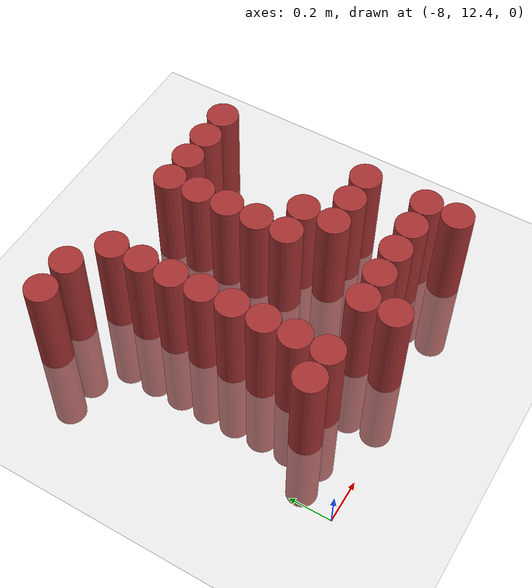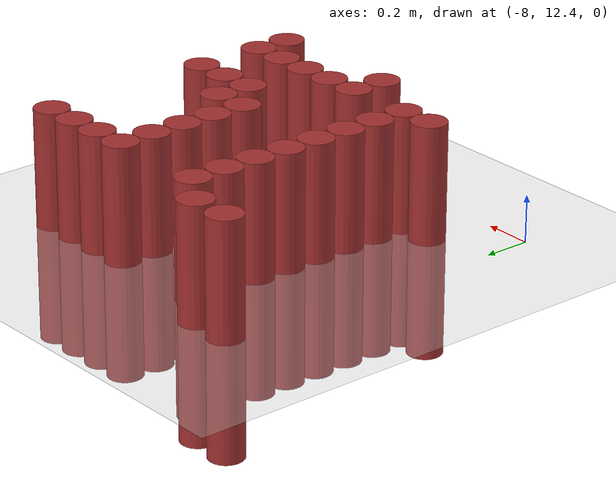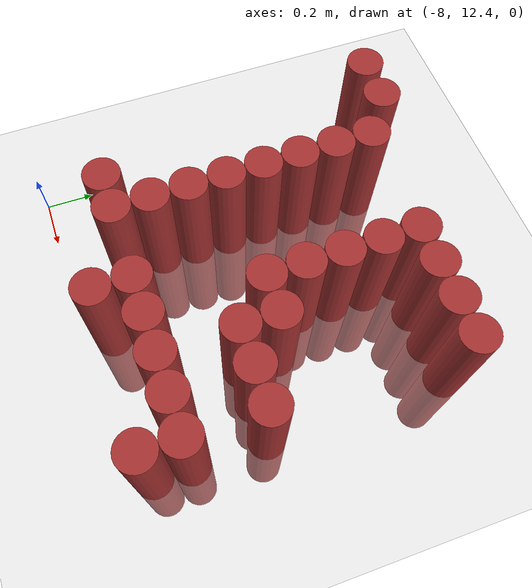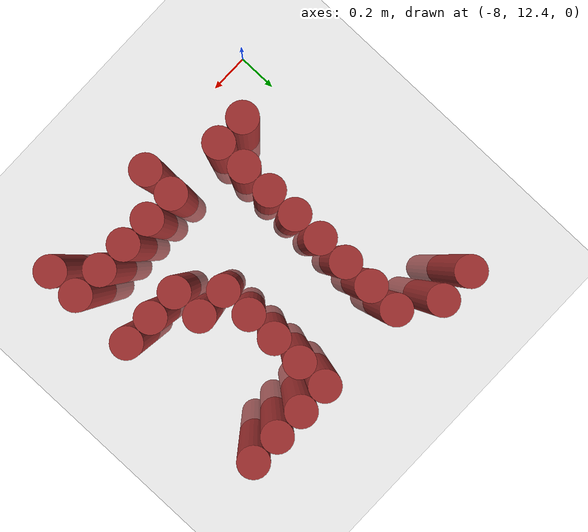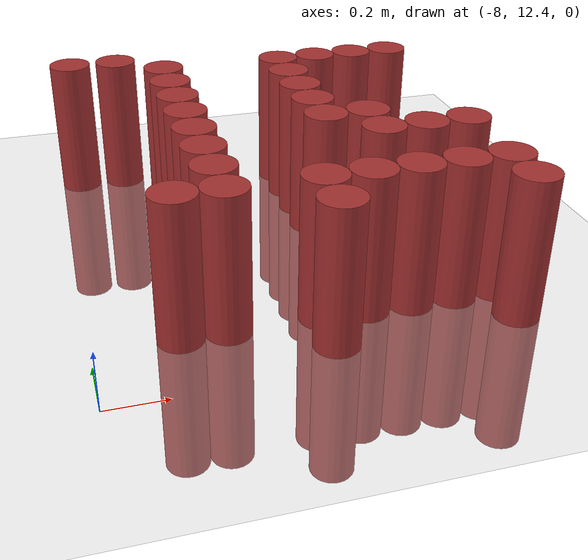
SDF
<sdf version="1.6">
 <world name="default">
  <model name="ground_plane">
   <static>1</static>
   <link name="link">
    <collision name="collision">
     <geometry><plane><normal>0 0 1</normal><size>100 100</size></plane></geometry>
     <surface><friction><ode><mu>100</mu><mu2>50</mu2></ode></friction></surface>
    </collision>
    <visual name="visual">
     <cast_shadows>0</cast_shadows>
     <geometry><plane><normal>0 0 1</normal><size>100 100</size></plane></geometry>
     <material>
      <script><uri>file://media/materials/scripts/gazebo.material</uri><name>Gazebo/Grey</name></script>
     </material>
    </visual>
   </link>
  </model>
  <model name="unit_cylinder_680">
   <static>1</static>
   <pose>-7.725 12.675 0 0 -0 0</pose>
   <link name="link">
    <inertial>
     <mass>1</mass>
     <inertia><ixx>0.145833</ixx><ixy>0</ixy><ixz>0</ixz><iyy>0.145833</iyy><iyz>0</iyz><izz>0.125</izz></inertia>
    </inertial>
    <collision name="collision">
     <geometry><cylinder><radius>0.075</radius><length>1</length></cylinder></geometry>
    </collision>
    <visual name="visual">
     <geometry><cylinder><radius>0.075</radius><length>1</length></cylinder></geometry>
     <material><ambient>0.648 0.192 0.192 1</ambient><diffuse>0.648 0.192 0.192 1</diffuse></material>
     <material>
      <script><name>Gazebo/Grey</name><uri>file://media/materials/scripts/gazebo.material</uri></script>
     </material>
    </visual>
   </link>
  </model>
  <model name="unit_cylinder_699">
   <static>1</static>
   <pose>-7.575 12.675 0 0 -0 0</pose>
   <link name="link">
    <inertial>
     <mass>1</mass>
     <inertia><ixx>0.145833</ixx><ixy>0</ixy><ixz>0</ixz><iyy>0.145833</iyy><iyz>0</iyz><izz>0.125</izz></inertia>
    </inertial>
    <collision name="collision">
     <geometry><cylinder><radius>0.075</radius><length>1</length></cylinder></geometry>
    </collision>
    <visual name="visual">
     <geometry><cylinder><radius>0.075</radius><length>1</length></cylinder></geometry>
     <material><ambient>0.648 0.192 0.192 1</ambient><diffuse>0.648 0.192 0.192 1</diffuse></material>
     <material>
      <script><name>Gazebo/Grey</name><uri>file://media/materials/scripts/gazebo.material</uri></script>
     </material>
    </visual>
   </link>
  </model>
  <model name="unit_cylinder_700">
   <static>1</static>
   <pose>-7.575 12.825 0 0 -0 0</pose>
   <link name="link">
    <inertial>
     <mass>1</mass>
     <inertia><ixx>0.145833</ixx><ixy>0</ixy><ixz>0</ixz><iyy>0.145833</iyy><iyz>0</iyz><izz>0.125</izz></inertia>
    </inertial>
    <collision name="collision">
     <geometry><cylinder><radius>0.075</radius><length>1</length></cylinder></geometry>
    </collision>
    <visual name="visual">
     <geometry><cylinder><radius>0.075</radius><length>1</length></cylinder></geometry>
     <material><ambient>0.648 0.192 0.192 1</ambient><diffuse>0.648 0.192 0.192 1</diffuse></material>
     <material>
      <script><name>Gazebo/Grey</name><uri>file://media/materials/scripts/gazebo.material</uri></script>
     </material>
    </visual>
   </link>
  </model>
  <model name="unit_cylinder_701">
   <static>1</static>
   <pose>-7.575 12.975 0 0 -0 0</pose>
   <link name="link">
    <inertial>
     <mass>1</mass>
     <inertia><ixx>0.145833</ixx><ixy>0</ixy><ixz>0</ixz><iyy>0.145833</iyy><iyz>0</iyz><izz>0.125</izz></inertia>
    </inertial>
    <collision name="collision">
     <geometry><cylinder><radius>0.075</radius><length>1</length></cylinder></geometry>
    </collision>
    <visual name="visual">
     <geometry><cylinder><radius>0.075</radius><length>1</length></cylinder></geometry>
     <material><ambient>0.648 0.192 0.192 1</ambient><diffuse>0.648 0.192 0.192 1</diffuse></material>
     <material>
      <script><name>Gazebo/Grey</name><uri>file://media/materials/scripts/gazebo.material</uri></script>
     </material>
    </visual>
   </link>
  </model>
  <model name="unit_cylinder_702">
   <static>1</static>
   <pose>-7.575 13.125 0 0 -0 0</pose>
   <link name="link">
    <inertial>
     <mass>1</mass>
     <inertia><ixx>0.145833</ixx><ixy>0</ixy><ixz>0</ixz><iyy>0.145833</iyy><iyz>0</iyz><izz>0.125</izz></inertia>
    </inertial>
    <collision name="collision">
     <geometry><cylinder><radius>0.075</radius><length>1</length></cylinder></geometry>
    </collision>
    <visual name="visual">
     <geometry><cylinder><radius>0.075</radius><length>1</length></cylinder></geometry>
     <material><ambient>0.648 0.192 0.192 1</ambient><diffuse>0.648 0.192 0.192 1</diffuse></material>
     <material>
      <script><name>Gazebo/Grey</name><uri>file://media/materials/scripts/gazebo.material</uri></script>
     </material>
    </visual>
   </link>
  </model>
  <model name="unit_cylinder_703">
   <static>1</static>
   <pose>-7.575 13.275 0 0 -0 0</pose>
   <link name="link">
    <inertial>
     <mass>1</mass>
     <inertia><ixx>0.145833</ixx><ixy>0</ixy><ixz>0</ixz><iyy>0.145833</iyy><iyz>0</iyz><izz>0.125</izz></inertia>
    </inertial>
    <collision name="collision">
     <geometry><cylinder><radius>0.075</radius><length>1</length></cylinder></geometry>
    </collision>
    <visual name="visual">
     <geometry><cylinder><radius>0.075</radius><length>1</length></cylinder></geometry>
     <material><ambient>0.648 0.192 0.192 1</ambient><diffuse>0.648 0.192 0.192 1</diffuse></material>
     <material>
      <script><name>Gazebo/Grey</name><uri>file://media/materials/scripts/gazebo.material</uri></script>
     </material>
    </visual>
   </link>
  </model>
  <model name="unit_cylinder_704">
   <static>1</static>
   <pose>-7.575 13.425 0 0 -0 0</pose>
   <link name="link">
    <inertial>
     <mass>1</mass>
     <inertia><ixx>0.145833</ixx><ixy>0</ixy><ixz>0</ixz><iyy>0.145833</iyy><iyz>0</iyz><izz>0.125</izz></inertia>
    </inertial>
    <collision name="collision">
     <geometry><cylinder><radius>0.075</radius><length>1</length></cylinder></geometry>
    </collision>
    <visual name="visual">
     <geometry><cylinder><radius>0.075</radius><length>1</length></cylinder></geometry>
     <material><ambient>0.648 0.192 0.192 1</ambient><diffuse>0.648 0.192 0.192 1</diffuse></material>
     <material>
      <script><name>Gazebo/Grey</name><uri>file://media/materials/scripts/gazebo.material</uri></script>
     </material>
    </visual>
   </link>
  </model>
  <model name="unit_cylinder_705">
   <static>1</static>
   <pose>-7.575 13.575 0 0 -0 0</pose>
   <link name="link">
    <inertial>
     <mass>1</mass>
     <inertia><ixx>0.145833</ixx><ixy>0</ixy><ixz>0</ixz><iyy>0.145833</iyy><iyz>0</iyz><izz>0.125</izz></inertia>
    </inertial>
    <collision name="collision">
     <geometry><cylinder><radius>0.075</radius><length>1</length></cylinder></geometry>
    </collision>
    <visual name="visual">
     <geometry><cylinder><radius>0.075</radius><length>1</length></cylinder></geometry>
     <material><ambient>0.648 0.192 0.192 1</ambient><diffuse>0.648 0.192 0.192 1</diffuse></material>
     <material>
      <script><name>Gazebo/Grey</name><uri>file://media/materials/scripts/gazebo.material</uri></script>
     </material>
    </visual>
   </link>
  </model>
  <model name="unit_cylinder_706">
   <static>1</static>
   <pose>-7.575 13.725 0 0 -0 0</pose>
   <link name="link">
    <inertial>
     <mass>1</mass>
     <inertia><ixx>0.145833</ixx><ixy>0</ixy><ixz>0</ixz><iyy>0.145833</iyy><iyz>0</iyz><izz>0.125</izz></inertia>
    </inertial>
    <collision name="collision">
     <geometry><cylinder><radius>0.075</radius><length>1</length></cylinder></geometry>
    </collision>
    <visual name="visual">
     <geometry><cylinder><radius>0.075</radius><length>1</length></cylinder></geometry>
     <material><ambient>0.648 0.192 0.192 1</ambient><diffuse>0.648 0.192 0.192 1</diffuse></material>
     <material>
      <script><name>Gazebo/Grey</name><uri>file://media/materials/scripts/gazebo.material</uri></script>
     </material>
    </visual>
   </link>
  </model>
  <model name="unit_cylinder_754">
   <static>1</static>
   <pose>-7.275 12.525 0 0 -0 0</pose>
   <link name="link">
    <inertial>
     <mass>1</mass>
     <inertia><ixx>0.145833</ixx><ixy>0</ixy><ixz>0</ixz><iyy>0.145833</iyy><iyz>0</iyz><izz>0.125</izz></inertia>
    </inertial>
    <collision name="collision">
     <geometry><cylinder><radius>0.075</radius><length>1</length></cylinder></geometry>
    </collision>
    <visual name="visual">
     <geometry><cylinder><radius>0.075</radius><length>1</length></cylinder></geometry>
     <material><ambient>0.648 0.192 0.192 1</ambient><diffuse>0.648 0.192 0.192 1</diffuse></material>
     <material>
      <script><name>Gazebo/Grey</name><uri>file://media/materials/scripts/gazebo.material</uri></script>
     </material>
    </visual>
   </link>
  </model>
  <model name="unit_cylinder_755">
   <static>1</static>
   <pose>-7.275 12.675 0 0 -0 0</pose>
   <link name="link">
    <inertial>
     <mass>1</mass>
     <inertia><ixx>0.145833</ixx><ixy>0</ixy><ixz>0</ixz><iyy>0.145833</iyy><iyz>0</iyz><izz>0.125</izz></inertia>
    </inertial>
    <collision name="collision">
     <geometry><cylinder><radius>0.075</radius><length>1</length></cylinder></geometry>
    </collision>
    <visual name="visual">
     <geometry><cylinder><radius>0.075</radius><length>1</length></cylinder></geometry>
     <material><ambient>0.648 0.192 0.192 1</ambient><diffuse>0.648 0.192 0.192 1</diffuse></material>
     <material>
      <script><name>Gazebo/Grey</name><uri>file://media/materials/scripts/gazebo.material</uri></script>
     </material>
    </visual>
   </link>
  </model>
  <model name="unit_cylinder_770">
   <static>1</static>
   <pose>-7.125 12.675 0 0 -0 0</pose>
   <link name="link">
    <inertial>
     <mass>1</mass>
     <inertia><ixx>0.145833</ixx><ixy>0</ixy><ixz>0</ixz><iyy>0.145833</iyy><iyz>0</iyz><izz>0.125</izz></inertia>
    </inertial>
    <collision name="collision">
     <geometry><cylinder><radius>0.075</radius><length>1</length></cylinder></geometry>
    </collision>
    <visual name="visual">
     <geometry><cylinder><radius>0.075</radius><length>1</length></cylinder></geometry>
     <material><ambient>0.648 0.192 0.192 1</ambient><diffuse>0.648 0.192 0.192 1</diffuse></material>
     <material>
      <script><name>Gazebo/Grey</name><uri>file://media/materials/scripts/gazebo.material</uri></script>
     </material>
    </visual>
   </link>
  </model>
  <model name="unit_cylinder_771">
   <static>1</static>
   <pose>-7.125 13.125 0 0 -0 0</pose>
   <link name="link">
    <inertial>
     <mass>1</mass>
     <inertia><ixx>0.145833</ixx><ixy>0</ixy><ixz>0</ixz><iyy>0.145833</iyy><iyz>0</iyz><izz>0.125</izz></inertia>
    </inertial>
    <collision name="collision">
     <geometry><cylinder><radius>0.075</radius><length>1</length></cylinder></geometry>
    </collision>
    <visual name="visual">
     <geometry><cylinder><radius>0.075</radius><length>1</length></cylinder></geometry>
     <material><ambient>0.648 0.192 0.192 1</ambient><diffuse>0.648 0.192 0.192 1</diffuse></material>
     <material>
      <script><name>Gazebo/Grey</name><uri>file://media/materials/scripts/gazebo.material</uri></script>
     </material>
    </visual>
   </link>
  </model>
  <model name="unit_cylinder_772">
   <static>1</static>
   <pose>-7.125 13.275 0 0 -0 0</pose>
   <link name="link">
    <inertial>
     <mass>1</mass>
     <inertia><ixx>0.145833</ixx><ixy>0</ixy><ixz>0</ixz><iyy>0.145833</iyy><iyz>0</iyz><izz>0.125</izz></inertia>
    </inertial>
    <collision name="collision">
     <geometry><cylinder><radius>0.075</radius><length>1</length></cylinder></geometry>
    </collision>
    <visual name="visual">
     <geometry><cylinder><radius>0.075</radius><length>1</length></cylinder></geometry>
     <material><ambient>0.648 0.192 0.192 1</ambient><diffuse>0.648 0.192 0.192 1</diffuse></material>
     <material>
      <script><name>Gazebo/Grey</name><uri>file://media/materials/scripts/gazebo.material</uri></script>
     </material>
    </visual>
   </link>
  </model>
  <model name="unit_cylinder_773">
   <static>1</static>
   <pose>-7.125 13.425 0 0 -0 0</pose>
   <link name="link">
    <inertial>
     <mass>1</mass>
     <inertia><ixx>0.145833</ixx><ixy>0</ixy><ixz>0</ixz><iyy>0.145833</iyy><iyz>0</iyz><izz>0.125</izz></inertia>
    </inertial>
    <collision name="collision">
     <geometry><cylinder><radius>0.075</radius><length>1</length></cylinder></geometry>
    </collision>
    <visual name="visual">
     <geometry><cylinder><radius>0.075</radius><length>1</length></cylinder></geometry>
     <material><ambient>0.648 0.192 0.192 1</ambient><diffuse>0.648 0.192 0.192 1</diffuse></material>
     <material>
      <script><name>Gazebo/Grey</name><uri>file://media/materials/scripts/gazebo.material</uri></script>
     </material>
    </visual>
   </link>
  </model>
  <model name="unit_cylinder_774">
   <static>1</static>
   <pose>-7.125 13.575 0 0 -0 0</pose>
   <link name="link">
    <inertial>
     <mass>1</mass>
     <inertia><ixx>0.145833</ixx><ixy>0</ixy><ixz>0</ixz><iyy>0.145833</iyy><iyz>0</iyz><izz>0.125</izz></inertia>
    </inertial>
    <collision name="collision">
     <geometry><cylinder><radius>0.075</radius><length>1</length></cylinder></geometry>
    </collision>
    <visual name="visual">
     <geometry><cylinder><radius>0.075</radius><length>1</length></cylinder></geometry>
     <material><ambient>0.648 0.192 0.192 1</ambient><diffuse>0.648 0.192 0.192 1</diffuse></material>
     <material>
      <script><name>Gazebo/Grey</name><uri>file://media/materials/scripts/gazebo.material</uri></script>
     </material>
    </visual>
   </link>
  </model>
  <model name="unit_cylinder_775">
   <static>1</static>
   <pose>-7.125 13.725 0 0 -0 0</pose>
   <link name="link">
    <inertial>
     <mass>1</mass>
     <inertia><ixx>0.145833</ixx><ixy>0</ixy><ixz>0</ixz><iyy>0.145833</iyy><iyz>0</iyz><izz>0.125</izz></inertia>
    </inertial>
    <collision name="collision">
     <geometry><cylinder><radius>0.075</radius><length>1</length></cylinder></geometry>
    </collision>
    <visual name="visual">
     <geometry><cylinder><radius>0.075</radius><length>1</length></cylinder></geometry>
     <material><ambient>0.648 0.192 0.192 1</ambient><diffuse>0.648 0.192 0.192 1</diffuse></material>
     <material>
      <script><name>Gazebo/Grey</name><uri>file://media/materials/scripts/gazebo.material</uri></script>
     </material>
    </visual>
   </link>
  </model>
  <model name="unit_cylinder_784">
   <static>1</static>
   <pose>-6.975 12.675 0 0 -0 0</pose>
   <link name="link">
    <inertial>
     <mass>1</mass>
     <inertia><ixx>0.145833</ixx><ixy>0</ixy><ixz>0</ixz><iyy>0.145833</iyy><iyz>0</iyz><izz>0.125</izz></inertia>
    </inertial>
    <collision name="collision">
     <geometry><cylinder><radius>0.075</radius><length>1</length></cylinder></geometry>
    </collision>
    <visual name="visual">
     <geometry><cylinder><radius>0.075</radius><length>1</length></cylinder></geometry>
     <material><ambient>0.648 0.192 0.192 1</ambient><diffuse>0.648 0.192 0.192 1</diffuse></material>
     <material>
      <script><name>Gazebo/Grey</name><uri>file://media/materials/scripts/gazebo.material</uri></script>
     </material>
    </visual>
   </link>
  </model>
  <model name="unit_cylinder_785">
   <static>1</static>
   <pose>-6.975 12.975 0 0 -0 0</pose>
   <link name="link">
    <inertial>
     <mass>1</mass>
     <inertia><ixx>0.145833</ixx><ixy>0</ixy><ixz>0</ixz><iyy>0.145833</iyy><iyz>0</iyz><izz>0.125</izz></inertia>
    </inertial>
    <collision name="collision">
     <geometry><cylinder><radius>0.075</radius><length>1</length></cylinder></geometry>
    </collision>
    <visual name="visual">
     <geometry><cylinder><radius>0.075</radius><length>1</length></cylinder></geometry>
     <material><ambient>0.648 0.192 0.192 1</ambient><diffuse>0.648 0.192 0.192 1</diffuse></material>
     <material>
      <script><name>Gazebo/Grey</name><uri>file://media/materials/scripts/gazebo.material</uri></script>
     </material>
    </visual>
   </link>
  </model>
  <model name="unit_cylinder_786">
   <static>1</static>
   <pose>-6.975 13.125 0 0 -0 0</pose>
   <link name="link">
    <inertial>
     <mass>1</mass>
     <inertia><ixx>0.145833</ixx><ixy>0</ixy><ixz>0</ixz><iyy>0.145833</iyy><iyz>0</iyz><izz>0.125</izz></inertia>
    </inertial>
    <collision name="collision">
     <geometry><cylinder><radius>0.075</radius><length>1</length></cylinder></geometry>
    </collision>
    <visual name="visual">
     <geometry><cylinder><radius>0.075</radius><length>1</length></cylinder></geometry>
     <material><ambient>0.648 0.192 0.192 1</ambient><diffuse>0.648 0.192 0.192 1</diffuse></material>
     <material>
      <script><name>Gazebo/Grey</name><uri>file://media/materials/scripts/gazebo.material</uri></script>
     </material>
    </visual>
   </link>
  </model>
  <model name="unit_cylinder_787">
   <static>1</static>
   <pose>-6.975 13.725 0 0 -0 0</pose>
   <link name="link">
    <inertial>
     <mass>1</mass>
     <inertia><ixx>0.145833</ixx><ixy>0</ixy><ixz>0</ixz><iyy>0.145833</iyy><iyz>0</iyz><izz>0.125</izz></inertia>
    </inertial>
    <collision name="collision">
     <geometry><cylinder><radius>0.075</radius><length>1</length></cylinder></geometry>
    </collision>
    <visual name="visual">
     <geometry><cylinder><radius>0.075</radius><length>1</length></cylinder></geometry>
     <material><ambient>0.648 0.192 0.192 1</ambient><diffuse>0.648 0.192 0.192 1</diffuse></material>
     <material>
      <script><name>Gazebo/Grey</name><uri>file://media/materials/scripts/gazebo.material</uri></script>
     </material>
    </visual>
   </link>
  </model>
  <model name="unit_cylinder_804">
   <static>1</static>
   <pose>-6.825 12.675 0 0 -0 0</pose>
   <link name="link">
    <inertial>
     <mass>1</mass>
     <inertia><ixx>0.145833</ixx><ixy>0</ixy><ixz>0</ixz><iyy>0.145833</iyy><iyz>0</iyz><izz>0.125</izz></inertia>
    </inertial>
    <collision name="collision">
     <geometry><cylinder><radius>0.075</radius><length>1</length></cylinder></geometry>
    </collision>
    <visual name="visual">
     <geometry><cylinder><radius>0.075</radius><length>1</length></cylinder></geometry>
     <material><ambient>0.648 0.192 0.192 1</ambient><diffuse>0.648 0.192 0.192 1</diffuse></material>
     <material>
      <script><name>Gazebo/Grey</name><uri>file://media/materials/scripts/gazebo.material</uri></script>
     </material>
    </visual>
   </link>
  </model>
  <model name="unit_cylinder_805">
   <static>1</static>
   <pose>-6.825 12.975 0 0 -0 0</pose>
   <link name="link">
    <inertial>
     <mass>1</mass>
     <inertia><ixx>0.145833</ixx><ixy>0</ixy><ixz>0</ixz><iyy>0.145833</iyy><iyz>0</iyz><izz>0.125</izz></inertia>
    </inertial>
    <collision name="collision">
     <geometry><cylinder><radius>0.075</radius><length>1</length></cylinder></geometry>
    </collision>
    <visual name="visual">
     <geometry><cylinder><radius>0.075</radius><length>1</length></cylinder></geometry>
     <material><ambient>0.648 0.192 0.192 1</ambient><diffuse>0.648 0.192 0.192 1</diffuse></material>
     <material>
      <script><name>Gazebo/Grey</name><uri>file://media/materials/scripts/gazebo.material</uri></script>
     </material>
    </visual>
   </link>
  </model>
  <model name="unit_cylinder_806">
   <static>1</static>
   <pose>-6.825 13.725 0 0 -0 0</pose>
   <link name="link">
    <inertial>
     <mass>1</mass>
     <inertia><ixx>0.145833</ixx><ixy>0</ixy><ixz>0</ixz><iyy>0.145833</iyy><iyz>0</iyz><izz>0.125</izz></inertia>
    </inertial>
    <collision name="collision">
     <geometry><cylinder><radius>0.075</radius><length>1</length></cylinder></geometry>
    </collision>
    <visual name="visual">
     <geometry><cylinder><radius>0.075</radius><length>1</length></cylinder></geometry>
     <material><ambient>0.648 0.192 0.192 1</ambient><diffuse>0.648 0.192 0.192 1</diffuse></material>
     <material>
      <script><name>Gazebo/Grey</name><uri>file://media/materials/scripts/gazebo.material</uri></script>
     </material>
    </visual>
   </link>
  </model>
  <model name="unit_cylinder_822">
   <static>1</static>
   <pose>-6.675 12.525 0 0 -0 0</pose>
   <link name="link">
    <inertial>
     <mass>1</mass>
     <inertia><ixx>0.145833</ixx><ixy>0</ixy><ixz>0</ixz><iyy>0.145833</iyy><iyz>0</iyz><izz>0.125</izz></inertia>
    </inertial>
    <collision name="collision">
     <geometry><cylinder><radius>0.075</radius><length>1</length></cylinder></geometry>
    </collision>
    <visual name="visual">
     <geometry><cylinder><radius>0.075</radius><length>1</length></cylinder></geometry>
     <material><ambient>0.648 0.192 0.192 1</ambient><diffuse>0.648 0.192 0.192 1</diffuse></material>
     <material>
      <script><name>Gazebo/Grey</name><uri>file://media/materials/scripts/gazebo.material</uri></script>
     </material>
    </visual>
   </link>
  </model>
  <model name="unit_cylinder_823">
   <static>1</static>
   <pose>-6.675 12.675 0 0 -0 0</pose>
   <link name="link">
    <inertial>
     <mass>1</mass>
     <inertia><ixx>0.145833</ixx><ixy>0</ixy><ixz>0</ixz><iyy>0.145833</iyy><iyz>0</iyz><izz>0.125</izz></inertia>
    </inertial>
    <collision name="collision">
     <geometry><cylinder><radius>0.075</radius><length>1</length></cylinder></geometry>
    </collision>
    <visual name="visual">
     <geometry><cylinder><radius>0.075</radius><length>1</length></cylinder></geometry>
     <material><ambient>0.648 0.192 0.192 1</ambient><diffuse>0.648 0.192 0.192 1</diffuse></material>
     <material>
      <script><name>Gazebo/Grey</name><uri>file://media/materials/scripts/gazebo.material</uri></script>
     </material>
    </visual>
   </link>
  </model>
  <model name="unit_cylinder_824">
   <static>1</static>
   <pose>-6.675 12.975 0 0 -0 0</pose>
   <link name="link">
    <inertial>
     <mass>1</mass>
     <inertia><ixx>0.145833</ixx><ixy>0</ixy><ixz>0</ixz><iyy>0.145833</iyy><iyz>0</iyz><izz>0.125</izz></inertia>
    </inertial>
    <collision name="collision">
     <geometry><cylinder><radius>0.075</radius><length>1</length></cylinder></geometry>
    </collision>
    <visual name="visual">
     <geometry><cylinder><radius>0.075</radius><length>1</length></cylinder></geometry>
     <material><ambient>0.648 0.192 0.192 1</ambient><diffuse>0.648 0.192 0.192 1</diffuse></material>
     <material>
      <script><name>Gazebo/Grey</name><uri>file://media/materials/scripts/gazebo.material</uri></script>
     </material>
    </visual>
   </link>
  </model>
  <model name="unit_cylinder_825">
   <static>1</static>
   <pose>-6.675 13.725 0 0 -0 0</pose>
   <link name="link">
    <inertial>
     <mass>1</mass>
     <inertia><ixx>0.145833</ixx><ixy>0</ixy><ixz>0</ixz><iyy>0.145833</iyy><iyz>0</iyz><izz>0.125</izz></inertia>
    </inertial>
    <collision name="collision">
     <geometry><cylinder><radius>0.075</radius><length>1</length></cylinder></geometry>
    </collision>
    <visual name="visual">
     <geometry><cylinder><radius>0.075</radius><length>1</length></cylinder></geometry>
     <material><ambient>0.648 0.192 0.192 1</ambient><diffuse>0.648 0.192 0.192 1</diffuse></material>
     <material>
      <script><name>Gazebo/Grey</name><uri>file://media/materials/scripts/gazebo.material</uri></script>
     </material>
    </visual>
   </link>
  </model>
  <model name="unit_cylinder_589_clone_1">
   <static>1</static>
   <pose>-7.9148 13.8459 0 0 -0 0</pose>
   <link name="link">
    <inertial>
     <mass>1</mass>
     <inertia><ixx>0.145833</ixx><ixy>0</ixy><ixz>0</ixz><iyy>0.145833</iyy><iyz>0</iyz><izz>0.125</izz></inertia>
    </inertial>
    <collision name="collision">
     <geometry><cylinder><radius>0.075</radius><length>1</length></cylinder></geometry>
    </collision>
    <visual name="visual">
     <geometry><cylinder><radius>0.075</radius><length>1</length></cylinder></geometry>
     <material><ambient>0.648 0.192 0.192 1</ambient><diffuse>0.648 0.192 0.192 1</diffuse></material>
     <material>
      <script><name>Gazebo/Grey</name><uri>file://media/materials/scripts/gazebo.material</uri></script>
     </material>
    </visual>
   </link>
  </model>
  <model name="unit_cylinder_589_clone_2">
   <static>1</static>
   <pose>-7.74234 13.8439 0 0 -0 0</pose>
   <link name="link">
    <inertial>
     <mass>1</mass>
     <inertia><ixx>0.145833</ixx><ixy>0</ixy><ixz>0</ixz><iyy>0.145833</iyy><iyz>0</iyz><izz>0.125</izz></inertia>
    </inertial>
    <collision name="collision">
     <geometry><cylinder><radius>0.075</radius><length>1</length></cylinder></geometry>
    </collision>
    <visual name="visual">
     <geometry><cylinder><radius>0.075</radius><length>1</length></cylinder></geometry>
     <material><ambient>0.648 0.192 0.192 1</ambient><diffuse>0.648 0.192 0.192 1</diffuse></material>
     <material>
      <script><name>Gazebo/Grey</name><uri>file://media/materials/scripts/gazebo.material</uri></script>
     </material>
    </visual>
   </link>
  </model>
 </world>
</sdf>
